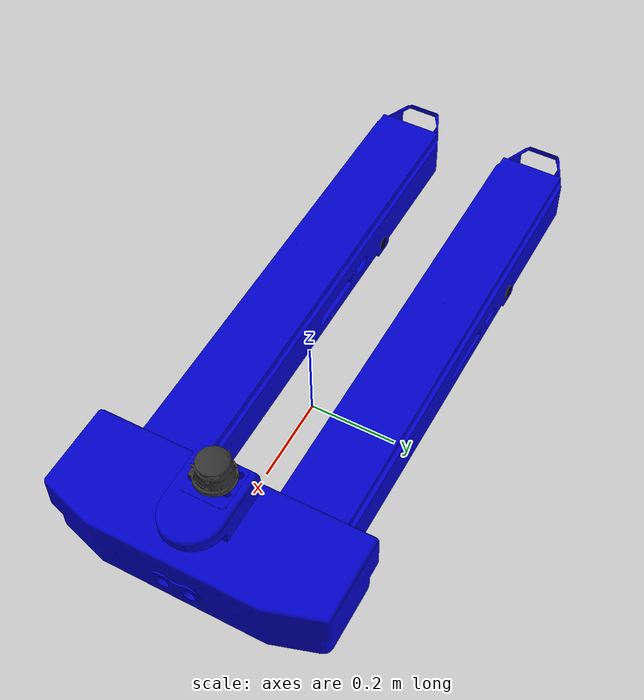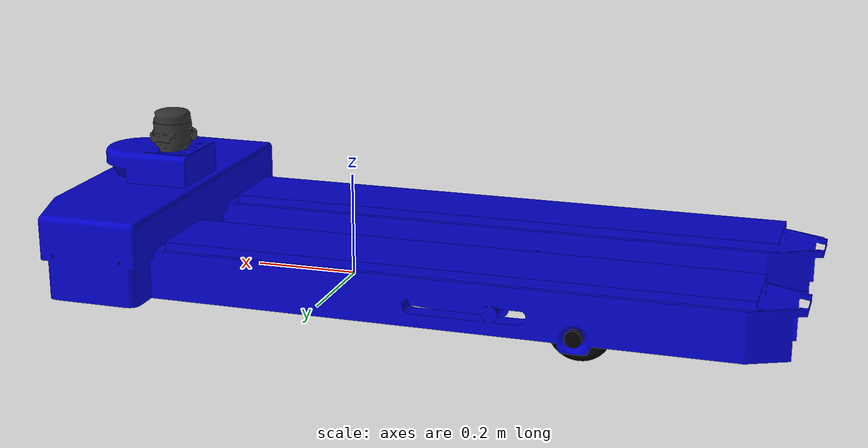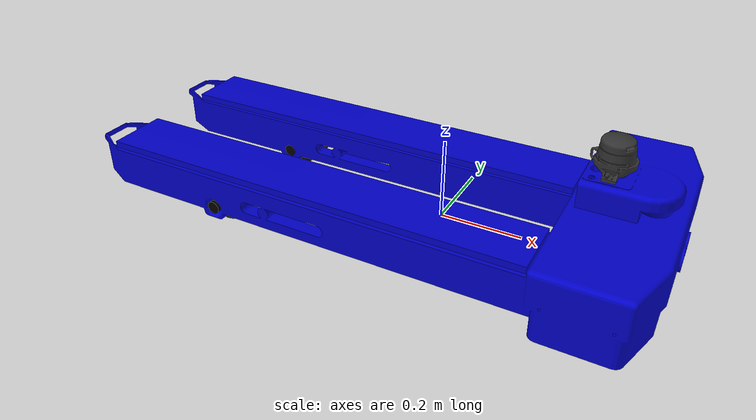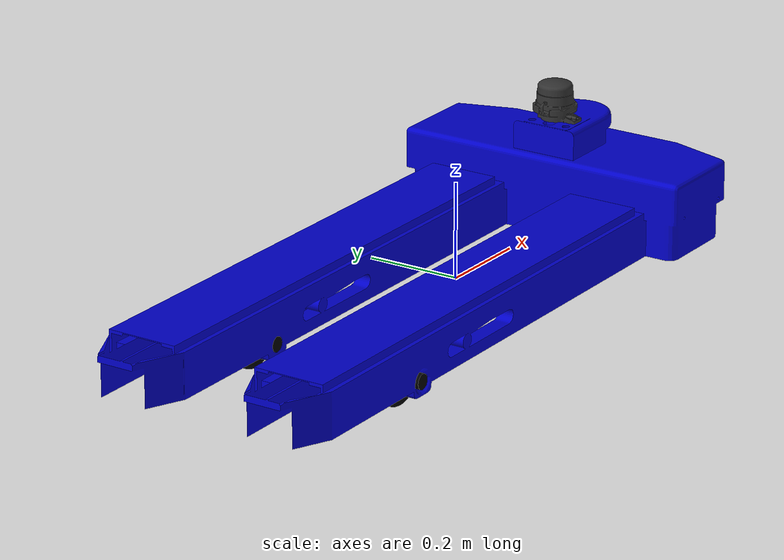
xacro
<?xml version="1.0"?>
<robot xmlns:xacro="http://www.ros.org/wiki/xacro" name="agv_car">

    <!-- =============== Model include ===================== -->

    <!-- Base -->
    <xacro:include filename="$(find agv_description)/xacro/model/base/base.xacro"/>

    <!-- Wheels -->
    <xacro:include filename="$(find agv_description)/xacro/model/wheel/wheel.xacro"/>

    <!-- RplidarA1 -->
    <xacro:include filename="$(find agv_description)/xacro/model/sensor/rplidarA1/rplidarA1.xacro"/>

    <!-- =============== Gazebo include ===================== -->

    <!-- Base -->
    <xacro:include filename="$(find agv_description)/xacro/gazebo/base/base.xacro"/>

    <!-- Wheels -->
    <xacro:include filename="$(find agv_description)/xacro/gazebo/wheel/wheel.xacro"/>

    <!-- RplidarA1 -->
    <xacro:include filename="$(find agv_description)/xacro/gazebo/sensor/rplidarA1/rplidarA1.xacro"/>

    <!-- Plugin -->
    <xacro:include filename="$(find agv_description)/xacro/gazebo/plugin/plugin.xacro"/>

    <!-- =============== Model macro ===================== -->

    <!-- Base -->
    <xacro:base/>

    <!-- Wheels -->
    <xacro:wheel/>

    <!-- RplidarA1 -->
    <xacro:rplidarA1/>

    <!-- =============== Gazebo macro ===================== -->

    <!-- Base -->
    <xacro:gazebo_base/>

    <!-- Wheels -->
    <xacro:gazebo_wheel/>

    <!-- RplidarA1 -->
    <xacro:gazebo_rplidarA1/>

    <!-- Plugin -->
    <xacro:gazebo_plugin/>

</robot>

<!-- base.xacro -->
<robot xmlns:xacro="http://www.ros.org/wiki/xacro">
    <xacro:macro name="base">
        <link name="base_link">
            <inertial>
                <origin xyz="-0.192290573236363 0.000273206227342948 0.0514683977225685" rpy="0 0 0" />
                <mass value="16.3293342103243" />
                <inertia ixx="0.0212770375492799" ixy="7.25883413651117E-06" ixz="0.00215758988773764" iyy="1.55564290216292" iyz="5.48192673600604E-07" izz="1.56017032270012" />
            </inertial>
            <visual>
                <origin xyz="0 0 0" rpy="0 0 0" />
                <geometry>
                    <mesh filename="package://agv_description/meshes/base_link.STL" />
                </geometry>
                <material name="blue">
                    <color rgba="0.0 0.0 0.8 1.0"/>
                </material>
            </visual>
            <collision>
                <origin xyz="0 0 0" rpy="0 0 0" />
                <geometry>
                    <mesh filename="package://agv_description/meshes/base_link.STL" />
                </geometry>
            </collision>
        </link>
    </xacro:macro>
</robot>

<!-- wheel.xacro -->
<robot xmlns:xacro="http://www.ros.org/wiki/xacro">
    <xacro:macro name="wheel">
        <link name="right_main_wheel_link">
            <inertial>
                <origin xyz="-1.54765089632747E-13 0.0850000106615442 -1.20459198171829E-13" rpy="0 0 0" />
                <mass value="0.745812681232109" />
                <inertia ixx="0.00129469600230131" ixy="1.7865957393857E-15" ixz="6.96702056125284E-08" iyy="0.00139189819473726" iyz="1.54495829032874E-15" izz="0.00129471702318901" />
            </inertial>
            <visual>
                <origin xyz="0 0 0" rpy="0 0 0" />
                <geometry>
                    <mesh filename="package://agv_description/meshes/right_main_wheel_link.STL" />
                </geometry>
                <material name="black">
                    <color rgba="0.0 0.0 0.0 1.0"/>
                </material>
            </visual>
            <collision>
                <origin xyz="0 0 0" rpy="0 0 0" />
                <geometry>
                    <mesh filename="package://agv_description/meshes/right_main_wheel_link.STL" />
                </geometry>
            </collision>
        </link>
        <joint name="right_main_wheel_joint" type="continuous">
            <origin xyz="-0.496441637210722 -0.250014571629858 0.00999999999638312" rpy="0 0 0" />
            <parent link="base_link" />
            <child link="right_main_wheel_link" />
            <axis xyz="0 -1 0" />
            <limit effort="0" velocity="10" />
        </joint>
        <link name="left_main_wheel_link">
            <inertial>
                <origin xyz="6.06847905260111E-13 0.0850000106603286 -3.73256980878978E-13" rpy="0 0 0" />
                <mass value="0.745812681232098" />
                <inertia ixx="0.0012946360965068" ixy="-5.01986749747639E-16" ixz="2.44138403576605E-09" iyy="0.00139189819473726" iyz="-2.21144916392371E-15" izz="0.00129477692898351" />
            </inertial>
            <visual>
                <origin xyz="0 0 0" rpy="0 0 0" />
                <geometry>
                    <mesh filename="package://agv_description/meshes/left_main_wheel_link.STL" />
                </geometry>
                <material name="black">
                    <color rgba="0.0 0.0 0.0 1.0"/>
                </material>
            </visual>
            <collision>
                <origin xyz="0 0 0" rpy="0 0 0" />
                <geometry>
                    <mesh filename="package://agv_description/meshes/left_main_wheel_link.STL" />
                </geometry>
            </collision>
        </link>
        <joint name="left_main_wheel_joint" type="continuous">
            <origin xyz="-0.496441637210722 0.079985428370142 0.00999999999638312" rpy="0 0 0" />
            <parent link="base_link" />
            <child link="left_main_wheel_link" />
            <axis xyz="0 -1 0" />
            <limit effort="0" velocity="10" />
        </joint>
        <link name="right_front_wheel_link">
            <inertial>
                <origin xyz="0.000676378335069394 0.0450460860929714 1.66906084508867E-08" rpy="0 0 0" />
                <mass value="0.217124452257966" />
                <inertia ixx="0.000121991191247687" ixy="9.71012430184508E-07" ixz="-1.4584553933088E-10" iyy="0.000186643383873472" iyz="8.28214222028593E-11" izz="0.000121976675731269" />
            </inertial>
            <visual>
                <origin xyz="0 0 0" rpy="0 0 0" />
                <geometry>
                    <mesh filename="package://agv_description/meshes/right_front_wheel_link.STL" />
                </geometry>
                <material name="black">
                    <color rgba="0.0 0.0 0.0 1.0"/>
                </material>
            </visual>
            <collision>
                <origin xyz="0 0 0" rpy="0 0 0" />
                <geometry>
                    <mesh filename="package://agv_description/meshes/right_front_wheel_link.STL" />
                </geometry>
            </collision>
        </link>
        <joint name="right_front_wheel_joint" type="continuous">
            <origin xyz="0.386372250383229 -0.22690884723017 0.00100000000281475" rpy="0 0 0" />
            <parent link="base_link" />
            <child link="right_front_wheel_link" />
            <axis xyz="-0.0150134947978406 -0.999887291135334 0" />
        </joint>
        <link name="left_front_wheel_link">
            <inertial>
                <origin xyz="-0.000521779881353157 0.0450481377135437 2.2837272406484E-08" rpy="0 0 0" />
                <mass value="0.217124482379157" />
                <inertia ixx="0.000121985204093452" ixy="-7.49011365935949E-07" ixz="-6.75979531643611E-11" iyy="0.000186649290119805" iyz="1.27959798311389E-10" izz="0.000121976809291945" />
            </inertial>
            <visual>
                <origin xyz="0 0 0" rpy="0 0 0" />
                <geometry>
                    <mesh filename="package://agv_description/meshes/left_front_wheel_link.STL" />
                </geometry>
                <material name="black">
                    <color rgba="0.0 0.0 0.0 1.0"/>
                </material>
            </visual>
            <collision>
                <origin xyz="0 0 0" rpy="0 0 0" />
                <geometry>
                    <mesh filename="package://agv_description/meshes/left_front_wheel_link.STL" />
                </geometry>
            </collision>
        </link>
        <joint name="left_front_wheel_joint" type="continuous">
            <origin xyz="0.387593833307685 0.135025220527393 0.00100000000282352" rpy="0 0 0" />
            <parent link="base_link" />
            <child link="left_front_wheel_link" />
            <axis xyz="0.0115823351866677 -0.999932922506117 0" />
        </joint>
    </xacro:macro>
</robot>

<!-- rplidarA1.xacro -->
<robot xmlns:xacro="http://www.ros.org/wiki/xacro">
  <xacro:macro name="rplidarA1">
    <link name="lidar_link">
      <inertial>
        <origin xyz="-1.52384838150166E-05 -0.000738135964715392 -0.039103793678701" rpy="0 0 0"/>
        <mass value="0.293916154164646"/>
        <inertia ixx="0.000124611724189049" ixy="-6.31874523970842E-07" ixz="1.03428175818311E-06"
                 iyy="0.000112429945625781" iyz="-3.45080374886339E-07" izz="0.000220404990973963"/>
      </inertial>

      <visual>
        <origin xyz="0 0 0" rpy="0 0 0"/>
        <geometry><mesh filename="package://agv_description/meshes/lidar_link.STL"/></geometry>
        <material name="grey"><color rgba="0.2 0.2 0.2 1.0"/></material>
      </visual>

      <collision>
        <origin xyz="0 0 0" rpy="0 0 0"/>
        <geometry><mesh filename="package://agv_description/meshes/lidar_link.STL"/></geometry>
      </collision>
    </link>

    <joint name="lidar_joint" type="fixed">
      <origin xyz="0.37599032923391 0.00560454991403092 0.304592005075015" rpy="0 0 0"/>
      <parent link="base_link"/>
      <child link="lidar_link"/>
    </joint>

    <!-- Sensor ray 1 lớp + plugin ROS -->
    <gazebo reference="lidar_link">
      <sensor type="ray" name="lidar">
        <pose>0 0 0 0 0 0</pose>
        <visualize>true</visualize>
        <always_on>true</always_on>
        <update_rate>10</update_rate>  <!-- A1 ~5.5–10 Hz -->

        <ray>
          <scan>
            <horizontal>
              <!-- 360° mượt: 720 tia (0.5°/tia); có thể tăng lên 1080 nếu cần -->
              <samples>720</samples>
              <resolution>1</resolution>                <!-- phải là số nguyên ≥1 -->
              <min_angle>-3.14159265</min_angle>
              <max_angle> 3.14159265</max_angle>
            </horizontal>
          </scan>

          <range>
            <min>0.32</min>        <!-- né self-hit/ nhiễu gần -->
            <max>6.0</max>         <!-- A1 thường ~6–12 m; bạn để 6.0 ổn -->
            <resolution>0.01</resolution>
          </range>

          <noise>
            <type>gaussian</type>
            <mean>0.0</mean>
            <stddev>0.005</stddev>
          </noise>
        </ray>

        <plugin name="gazebo_ros_laser" filename="libgazebo_ros_laser.so">
          <!-- Không đặt dấu / đầu để hưởng namespace robot -->
          <topicName>scan</topicName>
          <frameName>lidar_link</frameName>
          <updateRate>10</updateRate>
        </plugin>
      </sensor>
    </gazebo>
  </xacro:macro>
</robot>
